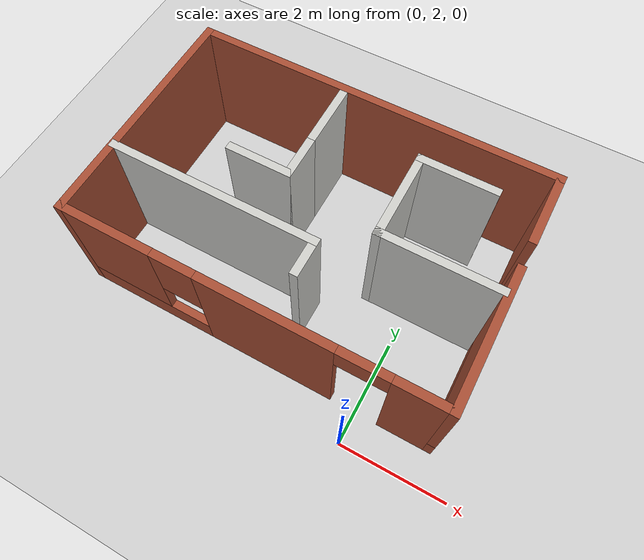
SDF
<sdf version="1.7">
 <world name="default">
  <light name="sun" type="directional">
   <pose>0 0 10 0 -0 0</pose>
   <diffuse>0.8 0.8 0.8 1</diffuse>
   <specular>0.2 0.2 0.2 1</specular>
   <attenuation>
    <range>1000</range>
    <constant>0.9</constant>
    <linear>0.01</linear>
    <quadratic>0.001</quadratic>
   </attenuation>
   <direction>-0.5 0.1 -0.9</direction>
   <spot><inner_angle>0</inner_angle><outer_angle>0</outer_angle><falloff>0</falloff></spot>
  </light>
  <model name="ground_plane">
   <static>1</static>
   <link name="link">
    <collision name="collision">
     <geometry><plane><normal>0 0 1</normal><size>100 100</size></plane></geometry>
     <surface><friction><ode><mu>100</mu><mu2>50</mu2></ode></friction></surface>
    </collision>
    <visual name="visual">
     <cast_shadows>0</cast_shadows>
     <geometry><plane><normal>0 0 1</normal><size>100 100</size></plane></geometry>
     <material>
      <script><uri>file://media/materials/scripts/gazebo.material</uri><name>Gazebo/Grey</name></script>
     </material>
    </visual>
   </link>
  </model>
  <gravity>0 0 -9.8</gravity>
  <magnetic_field>6e-06 2.3e-05 -4.2e-05</magnetic_field>
  <atmosphere type="adiabatic"/>
  <physics type="ode">
   <max_step_size>0.001</max_step_size>
   <real_time_factor>1</real_time_factor>
   <real_time_update_rate>1000</real_time_update_rate>
  </physics>
  <scene><ambient>0.4 0.4 0.4 1</ambient><background>0.7 0.7 0.7 1</background><shadows>1</shadows></scene>
  <audio><device>default</device></audio>
  <spherical_coordinates>
   <surface_model>EARTH_WGS84</surface_model>
   <latitude_deg>0</latitude_deg>
   <longitude_deg>0</longitude_deg>
   <elevation>0</elevation>
   <heading_deg>0</heading_deg>
  </spherical_coordinates>
  <model name="room1">
   <pose>-2.05911 4.85101 0 0 -0 0</pose>
   <link name="Wall_10">
    <collision name="Wall_10_Collision">
     <geometry><box><size>1.25 0.15 2.5</size></box></geometry>
     <pose>0 0 1.25 0 -0 0</pose>
    </collision>
    <visual name="Wall_10_Visual">
     <pose>0 0 1.25 0 -0 0</pose>
     <geometry><box><size>1.25 0.15 2.5</size></box></geometry>
     <material>
      <script><uri>file://media/materials/scripts/gazebo.material</uri><name>Gazebo/CeilingTiled</name></script>
      <ambient>1 1 1 1</ambient>
     </material>
     <meta><layer>0</layer></meta>
    </visual>
    <pose>-0.544708 1.52607 0 0 -0 1.5708</pose>
   </link>
   <link name="Wall_12">
    <collision name="Wall_12_Collision">
     <geometry><box><size>1 0.15 2.5</size></box></geometry>
     <pose>0 0 1.25 0 -0 0</pose>
    </collision>
    <visual name="Wall_12_Visual">
     <pose>0 0 1.25 0 -0 0</pose>
     <geometry><box><size>1 0.15 2.5</size></box></geometry>
     <material>
      <script><uri>file://media/materials/scripts/gazebo.material</uri><name>Gazebo/CeilingTiled</name></script>
      <ambient>1 1 1 1</ambient>
     </material>
     <meta><layer>0</layer></meta>
    </visual>
    <pose>-0.544708 0.551071 0 0 -0 -1.5708</pose>
   </link>
   <link name="Wall_13">
    <collision name="Wall_13_Collision">
     <geometry><box><size>1.25 0.15 2.5</size></box></geometry>
     <pose>0 0 1.25 0 -0 0</pose>
    </collision>
    <visual name="Wall_13_Visual">
     <pose>0 0 1.25 0 -0 0</pose>
     <geometry><box><size>1.25 0.15 2.5</size></box></geometry>
     <material>
      <script><uri>file://media/materials/scripts/gazebo.material</uri><name>Gazebo/CeilingTiled</name></script>
      <ambient>1 1 1 1</ambient>
     </material>
     <meta><layer>0</layer></meta>
    </visual>
    <pose>-1.09471 0.126072 0 0 -0 3.14159</pose>
   </link>
   <link name="Wall_15">
    <collision name="Wall_15_Collision">
     <geometry><box><size>4 0.15 2.5</size></box></geometry>
     <pose>0 0 1.25 0 -0 0</pose>
    </collision>
    <visual name="Wall_15_Visual">
     <pose>0 0 1.25 0 -0 0</pose>
     <geometry><box><size>4 0.15 2.5</size></box></geometry>
     <material>
      <script><uri>file://media/materials/scripts/gazebo.material</uri><name>Gazebo/CeilingTiled</name></script>
      <ambient>1 1 1 1</ambient>
     </material>
     <meta><layer>0</layer></meta>
    </visual>
    <pose>-1.47631 -0.782854 0 0 -0 0</pose>
   </link>
   <link name="Wall_16">
    <collision name="Wall_16_Collision">
     <geometry><box><size>0.75 0.15 2.5</size></box></geometry>
     <pose>0 0 1.25 0 -0 0</pose>
    </collision>
    <visual name="Wall_16_Visual">
     <pose>0 0 1.25 0 -0 0</pose>
     <geometry><box><size>0.75 0.15 2.5</size></box></geometry>
     <material>
      <script><uri>file://media/materials/scripts/gazebo.material</uri><name>Gazebo/CeilingTiled</name></script>
      <ambient>1 1 1 1</ambient>
     </material>
     <meta><layer>0</layer></meta>
    </visual>
    <pose>0.448692 -1.08285 0 0 -0 -1.5708</pose>
   </link>
   <link name="Wall_18">
    <collision name="Wall_18_Collision">
     <geometry><box><size>2.25 0.15 2.5</size></box></geometry>
     <pose>0 0 1.25 0 -0 0</pose>
    </collision>
    <visual name="Wall_18_Visual">
     <pose>0 0 1.25 0 -0 0</pose>
     <geometry><box><size>2.25 0.15 2.5</size></box></geometry>
     <material>
      <script><uri>file://media/materials/scripts/gazebo.material</uri><name>Gazebo/CeilingTiled</name></script>
      <ambient>1 1 1 1</ambient>
     </material>
     <meta><layer>0</layer></meta>
    </visual>
    <pose>2.29344 -0.161278 0 0 -0 3.14159</pose>
   </link>
   <link name="Wall_19">
    <collision name="Wall_19_Collision">
     <geometry><box><size>1.75 0.15 2.5</size></box></geometry>
     <pose>0 0 1.25 0 -0 0</pose>
    </collision>
    <visual name="Wall_19_Visual">
     <pose>0 0 1.25 0 -0 0</pose>
     <geometry><box><size>1.75 0.15 2.5</size></box></geometry>
     <material>
      <script><uri>file://media/materials/scripts/gazebo.material</uri><name>Gazebo/CeilingTiled</name></script>
      <ambient>1 1 1 1</ambient>
     </material>
     <meta><layer>0</layer></meta>
    </visual>
    <pose>1.24344 0.638722 0 0 -0 1.5708</pose>
   </link>
   <link name="Wall_2">
    <pose>3.425 -0.644877 0 0 -0 -1.5708</pose>
    <visual name="Wall_2_Visual_0">
     <pose>0 0 0.25 0 -0 0</pose>
     <geometry><box><size>3.21044 0.15 0.5</size></box></geometry>
     <material>
      <script><uri>file://media/materials/scripts/gazebo.material</uri><name>Gazebo/Bricks</name></script>
      <ambient>1 1 1 1</ambient>
     </material>
     <meta><layer>0</layer></meta>
    </visual>
    <collision name="Wall_2_Collision_0">
     <geometry><box><size>3.21044 0.15 0.5</size></box></geometry>
     <pose>0 0 0.25 0 -0 0</pose>
    </collision>
    <visual name="Wall_2_Visual_1">
     <pose>0.291323 0 1.5 0 -0 0</pose>
     <geometry><box><size>2.62779 0.15 2</size></box></geometry>
     <material>
      <script><uri>file://media/materials/scripts/gazebo.material</uri><name>Gazebo/Bricks</name></script>
      <ambient>1 1 1 1</ambient>
     </material>
     <meta><layer>0</layer></meta>
    </visual>
    <collision name="Wall_2_Collision_1">
     <geometry><box><size>2.62779 0.15 2</size></box></geometry>
     <pose>0.291323 0 1.5 0 -0 0</pose>
    </collision>
   </link>
   <link name="Wall_20">
    <collision name="Wall_20_Collision">
     <geometry><box><size>1.5 0.15 2.5</size></box></geometry>
     <pose>0 0 1.25 0 -0 0</pose>
    </collision>
    <visual name="Wall_20_Visual">
     <pose>0 0 1.25 0 -0 0</pose>
     <geometry><box><size>1.5 0.15 2.5</size></box></geometry>
     <material>
      <script><uri>file://media/materials/scripts/gazebo.material</uri><name>Gazebo/CeilingTiled</name></script>
      <ambient>1 1 1 1</ambient>
     </material>
     <meta><layer>0</layer></meta>
    </visual>
    <pose>1.91844 1.43872 0 0 -0 0</pose>
   </link>
   <link name="Wall_5">
    <pose>0 -2.17504 0 0 -0 3.14159</pose>
    <visual name="Wall_5_Visual_0">
     <pose>-2.98547 0 1.25 0 -0 0</pose>
     <geometry><box><size>1.02906 0.15 2.5</size></box></geometry>
     <material>
      <script><uri>file://media/materials/scripts/gazebo.material</uri><name>Gazebo/Bricks</name></script>
      <ambient>1 1 1 1</ambient>
     </material>
     <meta><layer>0</layer></meta>
    </visual>
    <collision name="Wall_5_Collision_0">
     <geometry><box><size>1.02906 0.15 2.5</size></box></geometry>
     <pose>-2.98547 0 1.25 0 -0 0</pose>
    </collision>
    <visual name="Wall_5_Visual_1">
     <pose>-0.34943 0 1.25 0 -0 0</pose>
     <geometry><box><size>2.44303 0.15 2.5</size></box></geometry>
     <material>
      <script><uri>file://media/materials/scripts/gazebo.material</uri><name>Gazebo/Bricks</name></script>
      <ambient>1 1 1 1</ambient>
     </material>
     <meta><layer>0</layer></meta>
    </visual>
    <collision name="Wall_5_Collision_1">
     <geometry><box><size>2.44303 0.15 2.5</size></box></geometry>
     <pose>-0.34943 0 1.25 0 -0 0</pose>
    </collision>
    <visual name="Wall_5_Visual_2">
     <pose>2.18604 0 0.25 0 -0 0</pose>
     <geometry><box><size>2.62792 0.15 0.5</size></box></geometry>
     <material>
      <script><uri>file://media/materials/scripts/gazebo.material</uri><name>Gazebo/Bricks</name></script>
      <ambient>1 1 1 1</ambient>
     </material>
     <meta><layer>0</layer></meta>
    </visual>
    <collision name="Wall_5_Collision_2">
     <geometry><box><size>2.62792 0.15 0.5</size></box></geometry>
     <pose>2.18604 0 0.25 0 -0 0</pose>
    </collision>
    <visual name="Wall_5_Visual_3">
     <pose>2.58604 0 1.5 0 -0 0</pose>
     <geometry><box><size>1.82792 0.15 2</size></box></geometry>
     <material>
      <script><uri>file://media/materials/scripts/gazebo.material</uri><name>Gazebo/Bricks</name></script>
      <ambient>1 1 1 1</ambient>
     </material>
     <meta><layer>0</layer></meta>
    </visual>
    <collision name="Wall_5_Collision_3">
     <geometry><box><size>1.82792 0.15 2</size></box></geometry>
     <pose>2.58604 0 1.5 0 -0 0</pose>
    </collision>
    <visual name="Wall_5_Visual_4">
     <pose>1.27208 0 1.9 0 -0 0</pose>
     <geometry><box><size>0.8 0.15 1.2</size></box></geometry>
     <material>
      <script><uri>file://media/materials/scripts/gazebo.material</uri><name>Gazebo/Bricks</name></script>
      <ambient>1 1 1 1</ambient>
     </material>
     <meta><layer>0</layer></meta>
    </visual>
    <collision name="Wall_5_Collision_4">
     <geometry><box><size>0.8 0.15 1.2</size></box></geometry>
     <pose>1.27208 0 1.9 0 -0 0</pose>
    </collision>
    <visual name="Wall_5_Visual_5">
     <pose>-2.02094 0 2.25 0 -0 0</pose>
     <geometry><box><size>0.9 0.15 0.5</size></box></geometry>
     <material>
      <script><uri>file://media/materials/scripts/gazebo.material</uri><name>Gazebo/Bricks</name></script>
      <ambient>1 1 1 1</ambient>
     </material>
     <meta><layer>0</layer></meta>
    </visual>
    <collision name="Wall_5_Collision_5">
     <geometry><box><size>0.9 0.15 0.5</size></box></geometry>
     <pose>-2.02094 0 2.25 0 -0 0</pose>
    </collision>
   </link>
   <link name="Wall_6">
    <collision name="Wall_6_Collision">
     <geometry><box><size>4.5 0.15 2.5</size></box></geometry>
     <pose>0 0 1.25 0 -0 0</pose>
    </collision>
    <visual name="Wall_6_Visual">
     <pose>0 0 1.25 0 -0 0</pose>
     <geometry><box><size>4.5 0.15 2.5</size></box></geometry>
     <material>
      <script><uri>file://media/materials/scripts/gazebo.material</uri><name>Gazebo/Bricks</name></script>
      <ambient>1 1 1 1</ambient>
     </material>
     <meta><layer>0</layer></meta>
    </visual>
    <pose>-3.425 -3.9e-05 0 0 -0 1.5708</pose>
   </link>
   <link name="Wall_7">
    <collision name="Wall_7_Collision">
     <geometry><box><size>7 0.15 2.5</size></box></geometry>
     <pose>0 0 1.25 0 -0 0</pose>
    </collision>
    <visual name="Wall_7_Visual">
     <pose>0 0 1.25 0 -0 0</pose>
     <geometry><box><size>7 0.15 2.5</size></box></geometry>
     <material>
      <script><uri>file://media/materials/scripts/gazebo.material</uri><name>Gazebo/Bricks</name></script>
      <ambient>1 1 1 1</ambient>
     </material>
     <meta><layer>0</layer></meta>
    </visual>
    <pose>0 2.17496 0 0 -0 0</pose>
   </link>
   <link name="Wall_8">
    <collision name="Wall_8_Collision">
     <geometry><box><size>1.43995 0.15 2.5</size></box></geometry>
     <pose>0 0 1.25 0 -0 0</pose>
    </collision>
    <visual name="Wall_8_Visual">
     <pose>0 0 1.25 0 -0 0</pose>
     <geometry><box><size>1.43995 0.15 2.5</size></box></geometry>
     <material>
      <script><uri>file://media/materials/scripts/gazebo.material</uri><name>Gazebo/Bricks</name></script>
      <ambient>1 1 1 1</ambient>
     </material>
     <meta><layer>0</layer></meta>
    </visual>
    <pose>3.425 1.53012 0 0 -0 -1.5708</pose>
   </link>
   <static>1</static>
  </model>
 </world>
</sdf>
